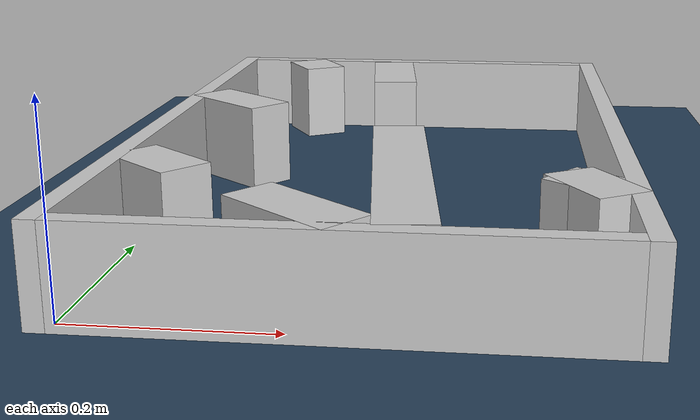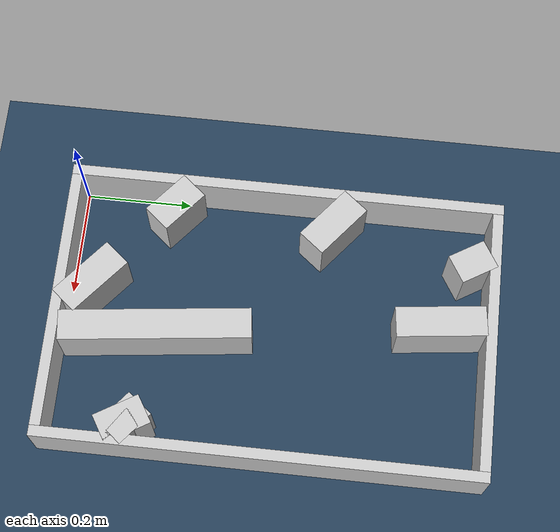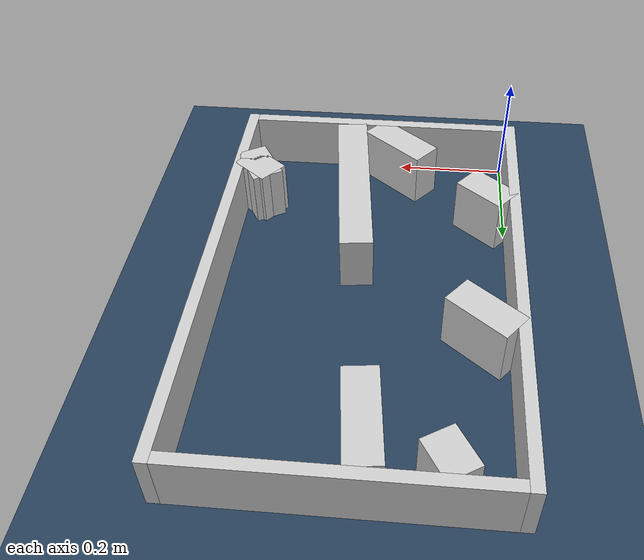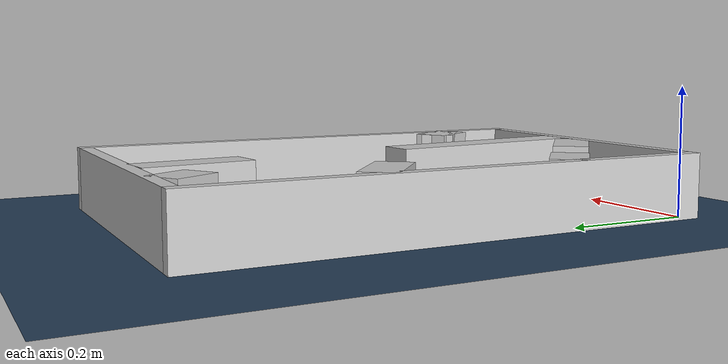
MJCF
<?xml version="1.0" ?>
<mujoco model="generated_real_template">
  <compiler angle="degree"/>
  <option timestep="0.002" integrator="implicitfast" iterations="100" cone="elliptic"/>
  <default>
    <geom density="1"/>
  </default>
  <asset>
    <texture builtin="gradient" height="3072" rgb1="0.3 0.5 0.7" rgb2="0 0 0" type="skybox" width="512"/>
    <texture builtin="checker" height="300" mark="edge" markrgb="0.8 0.8 0.8" name="groundplane" rgb1="0.2 0.3 0.4" rgb2="0.1 0.2 0.3" type="2d" width="300"/>
    <material name="groundplane" reflectance="0.2" texrepeat="5 5" texture="groundplane" texuniform="true"/>
  </asset>
  <worldbody>
    <light dir="0 0 -1" directional="true" pos="0 0 1.5"/>
    <geom name="floor" type="plane" condim="4" friction="0.5 0.005 0.001" material="groundplane" size="0 0 0.05"/>
    <body name="walls">
      <geom name="wall_boundary_left" type="box" condim="4" friction="1.0 0.005 0.0001" rgba="0.8 0.8 0.8 1" pos="-0.010000 0.387500 0.050000" euler="0 0 0.000000" size="0.010000 0.407500 0.050000"/>
      <geom name="wall_boundary_right" type="box" condim="4" friction="1.0 0.005 0.0001" rgba="0.8 0.8 0.8 1" pos="0.500000 0.387500 0.050000" euler="0 0 0.000000" size="0.010000 0.407500 0.050000"/>
      <geom name="wall_boundary_bottom" type="box" condim="4" friction="1.0 0.005 0.0001" rgba="0.8 0.8 0.8 1" pos="0.245000 -0.010000 0.050000" euler="0 0 0.000000" size="0.245000 0.010000 0.050000"/>
      <geom name="wall_boundary_top" type="box" condim="4" friction="1.0 0.005 0.0001" rgba="0.8 0.8 0.8 1" pos="0.245000 0.785000 0.050000" euler="0 0 0.000000" size="0.245000 0.010000 0.050000"/>
      <geom name="wall_inner_1_1" type="box" condim="4" friction="1.0 0.005 0.0001" rgba="0.8 0.8 0.8 1" pos="0.037558 0.181623 0.050000" euler="0 0 -39.805454" size="0.048889 0.028500 0.050000"/>
      <geom name="wall_inner_1_2" type="box" condim="4" friction="1.0 0.005 0.0001" rgba="0.8 0.8 0.8 1" pos="0.201416 0.045075 0.050000" euler="0 0 -39.805454" size="0.067449 0.028500 0.050000"/>
      <geom name="wall_inner_2_1" type="box" condim="4" friction="1.0 0.005 0.0001" rgba="0.8 0.8 0.8 1" pos="0.099273 0.743577 0.050000" euler="0 0 -58.920683" size="0.036690 0.028500 0.050000"/>
      <geom name="wall_inner_2_2" type="box" condim="4" friction="1.0 0.005 0.0001" rgba="0.8 0.8 0.8 1" pos="0.462544 0.140883 0.050000" euler="0 0 -58.920683" size="0.044643 0.028500 0.050000"/>
      <geom name="wall_inner_3_1" type="box" condim="4" friction="1.0 0.005 0.0001" rgba="0.8 0.8 0.8 1" pos="0.460283 0.145842 0.050000" euler="0 0 141.036981" size="0.038219 0.028500 0.050000"/>
      <geom name="wall_inner_3_2" type="box" condim="4" friction="1.0 0.005 0.0001" rgba="0.8 0.8 0.8 1" pos="0.046865 0.480179 0.050000" euler="0 0 141.036981" size="0.060273 0.028500 0.050000"/>
      <geom name="wall_inner_4_1" type="box" condim="4" friction="1.0 0.005 0.0001" rgba="0.8 0.8 0.8 1" pos="0.221461 0.692449 0.050000" euler="0 0 -83.477051" size="0.083089 0.028500 0.050000"/>
      <geom name="wall_inner_4_2" type="box" condim="4" friction="1.0 0.005 0.0001" rgba="0.8 0.8 0.8 1" pos="0.280628 0.174985 0.050000" euler="0 0 -83.477051" size="0.176126 0.028500 0.050000"/>
    </body>
  </worldbody>
</mujoco>
